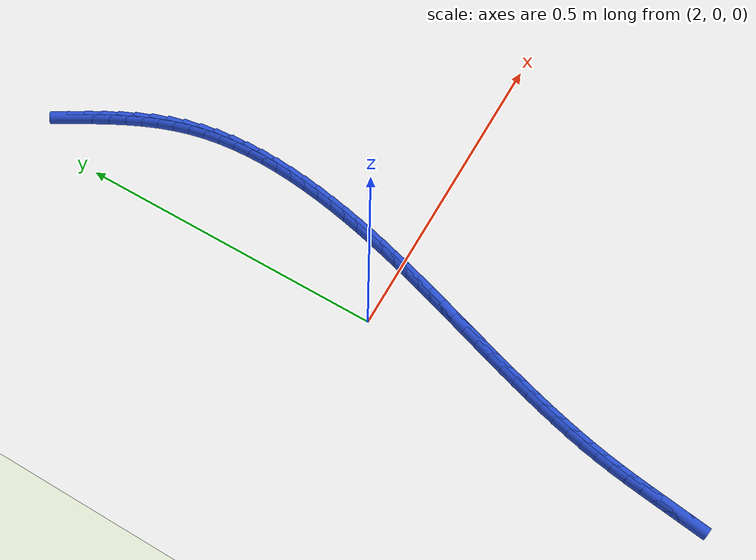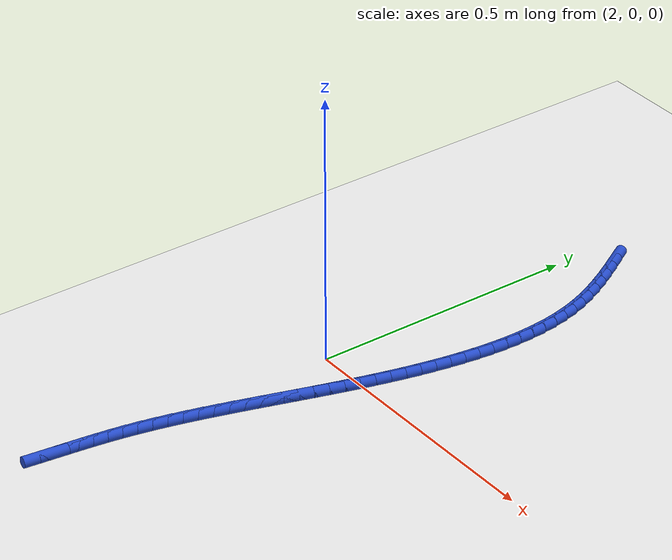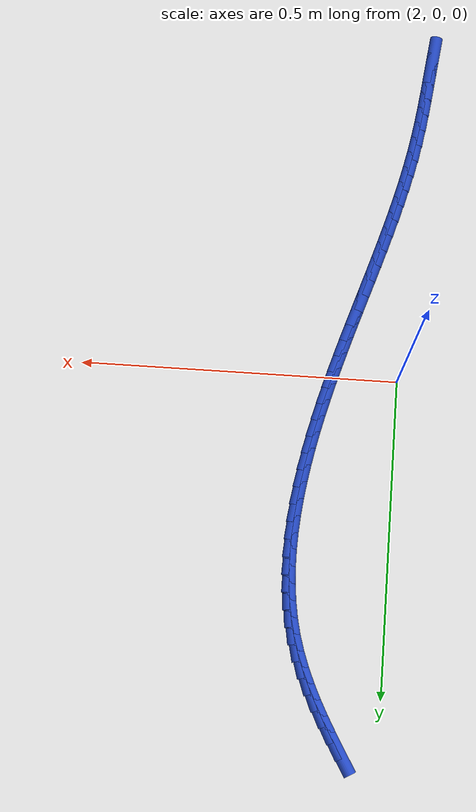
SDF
<sdf version="1.6">
 <world name="default">
  <model name="ground_plane">
   <static>1</static>
   <link name="link">
    <collision name="collision">
     <geometry><plane><normal>0 0 1</normal><size>100 100</size></plane></geometry>
     <surface><friction><ode><mu>100</mu><mu2>50</mu2></ode></friction></surface>
    </collision>
    <visual name="visual">
     <cast_shadows>0</cast_shadows>
     <geometry><plane><normal>0 0 1</normal><size>100 100</size></plane></geometry>
     <material>
      <script><uri>file://media/materials/scripts/gazebo.material</uri><name>Gazebo/WhiteGlow</name></script>
     </material>
    </visual>
   </link>
  </model>
  <model name="line">
   <link name="link_106">
    <pose>2.0617097885069713 0.5791009456725027 0.01 0 1.57 -1.0417948751601194</pose>
    <collision name="collision">
     <geometry><cylinder><radius>0.01</radius><length>0.08</length></cylinder></geometry>
    </collision>
    <visual name="visual">
     <material>
      <script><name>Gazebo/Blue</name><uri>file://media/materials/scripts/gazebo.material</uri></script>
     </material>
     <geometry><cylinder><radius>0.01</radius><length>0.08</length></cylinder></geometry>
    </visual>
   </link>
   <link name="link_107">
    <pose>2.075557122230398 0.5554131392653743 0.01 0 1.57 -1.0649773025050997</pose>
    <collision name="collision">
     <geometry><cylinder><radius>0.01</radius><length>0.08</length></cylinder></geometry>
    </collision>
    <visual name="visual">
     <material>
      <script><name>Gazebo/Blue</name><uri>file://media/materials/scripts/gazebo.material</uri></script>
     </material>
     <geometry><cylinder><radius>0.01</radius><length>0.08</length></cylinder></geometry>
    </visual>
   </link>
   <link name="link_108">
    <pose>2.0887252257602023 0.5316389510648379 0.01 0 1.57 -1.0952468598992928</pose>
    <collision name="collision">
     <geometry><cylinder><radius>0.01</radius><length>0.08</length></cylinder></geometry>
    </collision>
    <visual name="visual">
     <material>
      <script><name>Gazebo/Blue</name><uri>file://media/materials/scripts/gazebo.material</uri></script>
     </material>
     <geometry><cylinder><radius>0.01</radius><length>0.08</length></cylinder></geometry>
    </visual>
   </link>
   <link name="link_109">
    <pose>2.101048723008992 0.5077083012908975 0.01 0 1.57 -1.1328049238164106</pose>
    <collision name="collision">
     <geometry><cylinder><radius>0.01</radius><length>0.08</length></cylinder></geometry>
    </collision>
    <visual name="visual">
     <material>
      <script><name>Gazebo/Blue</name><uri>file://media/materials/scripts/gazebo.material</uri></script>
     </material>
     <geometry><cylinder><radius>0.01</radius><length>0.08</length></cylinder></geometry>
    </visual>
   </link>
   <link name="link_110">
    <pose>2.1123622378893736 0.4835511101635561 0.01 0 1.57 -1.1777811986397093</pose>
    <collision name="collision">
     <geometry><cylinder><radius>0.01</radius><length>0.08</length></cylinder></geometry>
    </collision>
    <visual name="visual">
     <material>
      <script><name>Gazebo/Blue</name><uri>file://media/materials/scripts/gazebo.material</uri></script>
     </material>
     <geometry><cylinder><radius>0.01</radius><length>0.08</length></cylinder></geometry>
    </visual>
   </link>
   <link name="link_111">
    <pose>2.1225003943139544 0.45909729790281845 0.01 0 1.57 -1.2301701369983</pose>
    <collision name="collision">
     <geometry><cylinder><radius>0.01</radius><length>0.08</length></cylinder></geometry>
    </collision>
    <visual name="visual">
     <material>
      <script><name>Gazebo/Blue</name><uri>file://media/materials/scripts/gazebo.material</uri></script>
     </material>
     <geometry><cylinder><radius>0.01</radius><length>0.08</length></cylinder></geometry>
    </visual>
   </link>
   <link name="link_112">
    <pose>2.131297816195341 0.43427678472868814 0.01 0 1.57 -1.2897556309995604</pose>
    <collision name="collision">
     <geometry><cylinder><radius>0.01</radius><length>0.08</length></cylinder></geometry>
    </collision>
    <visual name="visual">
     <material>
      <script><name>Gazebo/Blue</name><uri>file://media/materials/scripts/gazebo.material</uri></script>
     </material>
     <geometry><cylinder><radius>0.01</radius><length>0.08</length></cylinder></geometry>
    </visual>
   </link>
   <link name="link_113">
    <pose>2.1385891274461413 0.40901949086116873 0.01 0 1.57 -1.3542814319587406</pose>
    <collision name="collision">
     <geometry><cylinder><radius>0.01</radius><length>0.08</length></cylinder></geometry>
    </collision>
    <visual name="visual">
     <material>
      <script><name>Gazebo/Blue</name><uri>file://media/materials/scripts/gazebo.material</uri></script>
     </material>
     <geometry><cylinder><radius>0.01</radius><length>0.08</length></cylinder></geometry>
    </visual>
   </link>
   <link name="link_114">
    <pose>2.144251376809442 0.3832776499715393 0.01 0 1.57 -1.4158102971033224</pose>
    <collision name="collision">
     <geometry><cylinder><radius>0.01</radius><length>0.08</length></cylinder></geometry>
    </collision>
    <visual name="visual">
     <material>
      <script><name>Gazebo/Blue</name><uri>file://media/materials/scripts/gazebo.material</uri></script>
     </material>
     <geometry><cylinder><radius>0.01</radius><length>0.08</length></cylinder></geometry>
    </visual>
   </link>
   <link name="link_115">
    <pose>2.148341632134749 0.3570981772540021 0.01 0 1.57 -1.4723004554554038</pose>
    <collision name="collision">
     <geometry><cylinder><radius>0.01</radius><length>0.08</length></cylinder></geometry>
    </collision>
    <visual name="visual">
     <material>
      <script><name>Gazebo/Blue</name><uri>file://media/materials/scripts/gazebo.material</uri></script>
     </material>
     <geometry><cylinder><radius>0.01</radius><length>0.08</length></cylinder></geometry>
    </visual>
   </link>
   <link name="link_116">
    <pose>2.150964700974531 0.33055309672520883 0.01 0 1.57 -1.5238579154826077</pose>
    <collision name="collision">
     <geometry><cylinder><radius>0.01</radius><length>0.08</length></cylinder></geometry>
    </collision>
    <visual name="visual">
     <material>
      <script><name>Gazebo/Blue</name><uri>file://media/materials/scripts/gazebo.material</uri></script>
     </material>
     <geometry><cylinder><radius>0.01</radius><length>0.08</length></cylinder></geometry>
    </visual>
   </link>
   <link name="link_117">
    <pose>2.1522253912241633 0.30371443258216274 0.01 0 1.57 -1.5706810448632165</pose>
    <collision name="collision">
     <geometry><cylinder><radius>0.01</radius><length>0.08</length></cylinder></geometry>
    </collision>
    <visual name="visual">
     <material>
      <script><name>Gazebo/Blue</name><uri>file://media/materials/scripts/gazebo.material</uri></script>
     </material>
     <geometry><cylinder><radius>0.01</radius><length>0.08</length></cylinder></geometry>
    </visual>
   </link>
   <link name="link_118">
    <pose>2.152228510779021 0.2766542090218669 0.01 0 1.57 1.5285703046124783</pose>
    <collision name="collision">
     <geometry><cylinder><radius>0.01</radius><length>0.08</length></cylinder></geometry>
    </collision>
    <visual name="visual">
     <material>
      <script><name>Gazebo/Blue</name><uri>file://media/materials/scripts/gazebo.material</uri></script>
     </material>
     <geometry><cylinder><radius>0.01</radius><length>0.08</length></cylinder></geometry>
    </visual>
   </link>
   <link name="link_119">
    <pose>2.151078867534479 0.2494444502413257 0.01 0 1.57 1.4904341151220912</pose>
    <collision name="collision">
     <geometry><cylinder><radius>0.01</radius><length>0.08</length></cylinder></geometry>
    </collision>
    <visual name="visual">
     <material>
      <script><name>Gazebo/Blue</name><uri>file://media/materials/scripts/gazebo.material</uri></script>
     </material>
     <geometry><cylinder><radius>0.01</radius><length>0.08</length></cylinder></geometry>
    </visual>
   </link>
   <link name="link_120">
    <pose>2.1488812693859107 0.22215718043754223 0.01 0 1.57 1.456224151799545</pose>
    <collision name="collision">
     <geometry><cylinder><radius>0.01</radius><length>0.08</length></cylinder></geometry>
    </collision>
    <visual name="visual">
     <material>
      <script><name>Gazebo/Blue</name><uri>file://media/materials/scripts/gazebo.material</uri></script>
     </material>
     <geometry><cylinder><radius>0.01</radius><length>0.08</length></cylinder></geometry>
    </visual>
   </link>
   <link name="link_121">
    <pose>2.145740524228694 0.1948644238075202 0.01 0 1.57 1.4256747655368256</pose>
    <collision name="collision">
     <geometry><cylinder><radius>0.01</radius><length>0.08</length></cylinder></geometry>
    </collision>
    <visual name="visual">
     <material>
      <script><name>Gazebo/Blue</name><uri>file://media/materials/scripts/gazebo.material</uri></script>
     </material>
     <geometry><cylinder><radius>0.01</radius><length>0.08</length></cylinder></geometry>
    </visual>
   </link>
   <link name="link_122">
    <pose>2.1417614399582012 0.16763820454826311 0.01 0 1.57 1.398543487704675</pose>
    <collision name="collision">
     <geometry><cylinder><radius>0.01</radius><length>0.08</length></cylinder></geometry>
    </collision>
    <visual name="visual">
     <material>
      <script><name>Gazebo/Blue</name><uri>file://media/materials/scripts/gazebo.material</uri></script>
     </material>
     <geometry><cylinder><radius>0.01</radius><length>0.08</length></cylinder></geometry>
    </visual>
   </link>
   <link name="link_123">
    <pose>2.137048805430933 0.14055050890555687 0.01 0 1.57 1.3743934281388728</pose>
    <collision name="collision">
     <geometry><cylinder><radius>0.01</radius><length>0.08</length></cylinder></geometry>
    </collision>
    <visual name="visual">
     <material>
      <script><name>Gazebo/Blue</name><uri>file://media/materials/scripts/gazebo.material</uri></script>
     </material>
     <geometry><cylinder><radius>0.01</radius><length>0.08</length></cylinder></geometry>
    </visual>
   </link>
   <link name="link_124">
    <pose>2.1316969691169296 0.11365251173982498 0.01 0 1.57 1.3525439467801532</pose>
    <collision name="collision">
     <geometry><cylinder><radius>0.01</radius><length>0.08</length></cylinder></geometry>
    </collision>
    <visual name="visual">
     <material>
      <script><name>Gazebo/Blue</name><uri>file://media/materials/scripts/gazebo.material</uri></script>
     </material>
     <geometry><cylinder><radius>0.01</radius><length>0.08</length></cylinder></geometry>
    </visual>
   </link>
   <link name="link_125">
    <pose>2.1257725615743515 0.08694013630295294 0.01 0 1.57 1.3329254455770845</pose>
    <collision name="collision">
     <geometry><cylinder><radius>0.01</radius><length>0.08</length></cylinder></geometry>
    </collision>
    <visual name="visual">
     <material>
      <script><name>Gazebo/Blue</name><uri>file://media/materials/scripts/gazebo.material</uri></script>
     </material>
     <geometry><cylinder><radius>0.01</radius><length>0.08</length></cylinder></geometry>
    </visual>
   </link>
   <link name="link_126">
    <pose>2.1193376649342257 0.060400239221731655 0.01 0 1.57 1.3155636156404653</pose>
    <collision name="collision">
     <geometry><cylinder><radius>0.01</radius><length>0.08</length></cylinder></geometry>
    </collision>
    <visual name="visual">
     <material>
      <script><name>Gazebo/Blue</name><uri>file://media/materials/scripts/gazebo.material</uri></script>
     </material>
     <geometry><cylinder><radius>0.01</radius><length>0.08</length></cylinder></geometry>
    </visual>
   </link>
   <link name="link_127">
    <pose>2.1124543613275786 0.03401967712295306 0.01 0 1.57 1.3004758257200215</pose>
    <collision name="collision">
     <geometry><cylinder><radius>0.01</radius><length>0.08</length></cylinder></geometry>
    </collision>
    <visual name="visual">
     <material>
      <script><name>Gazebo/Blue</name><uri>file://media/materials/scripts/gazebo.material</uri></script>
     </material>
     <geometry><cylinder><radius>0.01</radius><length>0.08</length></cylinder></geometry>
    </visual>
   </link>
   <link name="link_128">
    <pose>2.1051847328854385 0.007785306633408087 0.01 0 1.57 1.2876737238943876</pose>
    <collision name="collision">
     <geometry><cylinder><radius>0.01</radius><length>0.08</length></cylinder></geometry>
    </collision>
    <visual name="visual">
     <material>
      <script><name>Gazebo/Blue</name><uri>file://media/materials/scripts/gazebo.material</uri></script>
     </material>
     <geometry><cylinder><radius>0.01</radius><length>0.08</length></cylinder></geometry>
    </visual>
   </link>
   <link name="link_129">
    <pose>2.0975908617388317 -0.01831601562011212 0.01 0 1.57 1.2771655640591038</pose>
    <collision name="collision">
     <geometry><cylinder><radius>0.01</radius><length>0.08</length></cylinder></geometry>
    </collision>
    <visual name="visual">
     <material>
      <script><name>Gazebo/Blue</name><uri>file://media/materials/scripts/gazebo.material</uri></script>
     </material>
     <geometry><cylinder><radius>0.01</radius><length>0.08</length></cylinder></geometry>
    </visual>
   </link>
   <link name="link_130">
    <pose>2.0897348300187857 -0.04429743301081633 0.01 0 1.57 1.2689582179491106</pose>
    <collision name="collision">
     <geometry><cylinder><radius>0.01</radius><length>0.08</length></cylinder></geometry>
    </collision>
    <visual name="visual">
     <material>
      <script><name>Gazebo/Blue</name><uri>file://media/materials/scripts/gazebo.material</uri></script>
     </material>
     <geometry><cylinder><radius>0.01</radius><length>0.08</length></cylinder></geometry>
    </visual>
   </link>
   <link name="link_131">
    <pose>2.0816787198563267 -0.07017208891191332 0.01 0 1.57 1.2630588523402586</pose>
    <collision name="collision">
     <geometry><cylinder><radius>0.01</radius><length>0.08</length></cylinder></geometry>
    </collision>
    <visual name="visual">
     <material>
      <script><name>Gazebo/Blue</name><uri>file://media/materials/scripts/gazebo.material</uri></script>
     </material>
     <geometry><cylinder><radius>0.01</radius><length>0.08</length></cylinder></geometry>
    </visual>
   </link>
   <link name="link_132">
    <pose>2.0734846133824827 -0.09595312669661184 0.01 0 1.57 1.25947626262644</pose>
    <collision name="collision">
     <geometry><cylinder><radius>0.01</radius><length>0.08</length></cylinder></geometry>
    </collision>
    <visual name="visual">
     <material>
      <script><name>Gazebo/Blue</name><uri>file://media/materials/scripts/gazebo.material</uri></script>
     </material>
     <geometry><cylinder><radius>0.01</radius><length>0.08</length></cylinder></geometry>
    </visual>
   </link>
   <link name="link_133">
    <pose>2.065214592728281 -0.12165368973812146 0.01 0 1.57 1.258221859126544</pose>
    <collision name="collision">
     <geometry><cylinder><radius>0.01</radius><length>0.08</length></cylinder></geometry>
    </collision>
    <visual name="visual">
     <material>
      <script><name>Gazebo/Blue</name><uri>file://media/materials/scripts/gazebo.material</uri></script>
     </material>
     <geometry><cylinder><radius>0.01</radius><length>0.08</length></cylinder></geometry>
    </visual>
   </link>
   <link name="link_134">
    <pose>2.056930740024747 -0.14728692140964944 0.01 0 1.57 1.259310302424667</pose>
    <collision name="collision">
     <geometry><cylinder><radius>0.01</radius><length>0.08</length></cylinder></geometry>
    </collision>
    <visual name="visual">
     <material>
      <script><name>Gazebo/Blue</name><uri>file://media/materials/scripts/gazebo.material</uri></script>
     </material>
     <geometry><cylinder><radius>0.01</radius><length>0.08</length></cylinder></geometry>
    </visual>
   </link>
   <link name="link_135">
    <pose>2.048695137402909 -0.1728659650844053 0.01 0 1.57 1.2627597800508406</pose>
    <collision name="collision">
     <geometry><cylinder><radius>0.01</radius><length>0.08</length></cylinder></geometry>
    </collision>
    <visual name="visual">
     <material>
      <script><name>Gazebo/Blue</name><uri>file://media/materials/scripts/gazebo.material</uri></script>
     </material>
     <geometry><cylinder><radius>0.01</radius><length>0.08</length></cylinder></geometry>
    </visual>
   </link>
   <link name="link_136">
    <pose>2.0405698669937946 -0.1984039641355978 0.01 0 1.57 1.2685919101389145</pose>
    <collision name="collision">
     <geometry><cylinder><radius>0.01</radius><length>0.08</length></cylinder></geometry>
    </collision>
    <visual name="visual">
     <material>
      <script><name>Gazebo/Blue</name><uri>file://media/materials/scripts/gazebo.material</uri></script>
     </material>
     <geometry><cylinder><radius>0.01</radius><length>0.08</length></cylinder></geometry>
    </visual>
   </link>
   <link name="link_137">
    <pose>2.0326170109284294 -0.2239140619364358 0.01 0 1.57 1.2768312496610499</pose>
    <collision name="collision">
     <geometry><cylinder><radius>0.01</radius><length>0.08</length></cylinder></geometry>
    </collision>
    <visual name="visual">
     <material>
      <script><name>Gazebo/Blue</name><uri>file://media/materials/scripts/gazebo.material</uri></script>
     </material>
     <geometry><cylinder><radius>0.01</radius><length>0.08</length></cylinder></geometry>
    </visual>
   </link>
   <link name="link_138">
    <pose>2.0248986513378417 -0.24940940186012797 0.01 0 1.57 1.2875043768708858</pose>
    <collision name="collision">
     <geometry><cylinder><radius>0.01</radius><length>0.08</length></cylinder></geometry>
    </collision>
    <visual name="visual">
     <material>
      <script><name>Gazebo/Blue</name><uri>file://media/materials/scripts/gazebo.material</uri></script>
     </material>
     <geometry><cylinder><radius>0.01</radius><length>0.08</length></cylinder></geometry>
    </visual>
   </link>
   <link name="link_139">
    <pose>2.0174768703530583 -0.2749031272798832 0.01 0 1.57 1.3006385113874825</pose>
    <collision name="collision">
     <geometry><cylinder><radius>0.01</radius><length>0.08</length></cylinder></geometry>
    </collision>
    <visual name="visual">
     <material>
      <script><name>Gazebo/Blue</name><uri>file://media/materials/scripts/gazebo.material</uri></script>
     </material>
     <geometry><cylinder><radius>0.01</radius><length>0.08</length></cylinder></geometry>
    </visual>
   </link>
   <link name="link_140">
    <pose>2.010413750105106 -0.3004083815689109 0.01 0 1.57 1.3162596329849092</pose>
    <collision name="collision">
     <geometry><cylinder><radius>0.01</radius><length>0.08</length></cylinder></geometry>
    </collision>
    <visual name="visual">
     <material>
      <script><name>Gazebo/Blue</name><uri>file://media/materials/scripts/gazebo.material</uri></script>
     </material>
     <geometry><cylinder><radius>0.01</radius><length>0.08</length></cylinder></geometry>
    </visual>
   </link>
   <link name="link_141">
    <pose>2.0037713727250117 -0.3259383081004185 0.01 0 1.57 1.33439006417583</pose>
    <collision name="collision">
     <geometry><cylinder><radius>0.01</radius><length>0.08</length></cylinder></geometry>
    </collision>
    <visual name="visual">
     <material>
      <script><name>Gazebo/Blue</name><uri>file://media/materials/scripts/gazebo.material</uri></script>
     </material>
     <geometry><cylinder><radius>0.01</radius><length>0.08</length></cylinder></geometry>
    </visual>
   </link>
   <link name="link_142">
    <pose>1.9976118203438031 -0.3515060502476154 0.01 0 1.57 1.355045495102373</pose>
    <collision name="collision">
     <geometry><cylinder><radius>0.01</radius><length>0.08</length></cylinder></geometry>
    </collision>
    <visual name="visual">
     <material>
      <script><name>Gazebo/Blue</name><uri>file://media/materials/scripts/gazebo.material</uri></script>
     </material>
     <geometry><cylinder><radius>0.01</radius><length>0.08</length></cylinder></geometry>
    </visual>
   </link>
   <link name="link_143">
    <pose>1.9919971750925067 -0.37712475138371043 0.01 0 1.57 1.3782314091044279</pose>
    <collision name="collision">
     <geometry><cylinder><radius>0.01</radius><length>0.08</length></cylinder></geometry>
    </collision>
    <visual name="visual">
     <material>
      <script><name>Gazebo/Blue</name><uri>file://media/materials/scripts/gazebo.material</uri></script>
     </material>
     <geometry><cylinder><radius>0.01</radius><length>0.08</length></cylinder></geometry>
    </visual>
   </link>
   <link name="link_144">
    <pose>1.9869895177145422 -0.4028075556735563 0.01 0 1.57 1.402506984845697</pose>
    <collision name="collision">
     <geometry><cylinder><radius>0.01</radius><length>0.08</length></cylinder></geometry>
    </collision>
    <visual name="visual">
     <material>
      <script><name>Gazebo/Blue</name><uri>file://media/materials/scripts/gazebo.material</uri></script>
     </material>
     <geometry><cylinder><radius>0.01</radius><length>0.08</length></cylinder></geometry>
    </visual>
   </link>
   <link name="link_145">
    <pose>1.9826089079639047 -0.42859158067171826 0.01 0 1.57 1.4224961316911142</pose>
    <collision name="collision">
     <geometry><cylinder><radius>0.01</radius><length>0.08</length></cylinder></geometry>
    </collision>
    <visual name="visual">
     <material>
      <script><name>Gazebo/Blue</name><uri>file://media/materials/scripts/gazebo.material</uri></script>
     </material>
     <geometry><cylinder><radius>0.01</radius><length>0.08</length></cylinder></geometry>
    </visual>
   </link>
   <link name="link_146">
    <pose>1.9787232120105414 -0.45460077187641706 0.01 0 1.57 1.436743976408335</pose>
    <collision name="collision">
     <geometry><cylinder><radius>0.01</radius><length>0.08</length></cylinder></geometry>
    </collision>
    <visual name="visual">
     <material>
      <script><name>Gazebo/Blue</name><uri>file://media/materials/scripts/gazebo.material</uri></script>
     </material>
     <geometry><cylinder><radius>0.01</radius><length>0.08</length></cylinder></geometry>
    </visual>
   </link>
   <link name="link_147">
    <pose>1.9751658510626366 -0.4809787259769402 0.01 0 1.57 1.4451850334510745</pose>
    <collision name="collision">
     <geometry><cylinder><radius>0.01</radius><length>0.08</length></cylinder></geometry>
    </collision>
    <visual name="visual">
     <material>
      <script><name>Gazebo/Blue</name><uri>file://media/materials/scripts/gazebo.material</uri></script>
     </material>
     <geometry><cylinder><radius>0.01</radius><length>0.08</length></cylinder></geometry>
    </visual>
   </link>
   <link name="link_148">
    <pose>1.9717702463283753 -0.5078690396625755 0.01 0 1.57 1.4479734871076269</pose>
    <collision name="collision">
     <geometry><cylinder><radius>0.01</radius><length>0.08</length></cylinder></geometry>
    </collision>
    <visual name="visual">
     <material>
      <script><name>Gazebo/Blue</name><uri>file://media/materials/scripts/gazebo.material</uri></script>
     </material>
     <geometry><cylinder><radius>0.01</radius><length>0.08</length></cylinder></geometry>
    </visual>
   </link>
   <link name="link_149">
    <pose>1.96836981901594 -0.5354153096226111 0.01 0 1.57 1.4449263913781503</pose>
    <collision name="collision">
     <geometry><cylinder><radius>0.01</radius><length>0.08</length></cylinder></geometry>
    </collision>
    <visual name="visual">
     <material>
      <script><name>Gazebo/Blue</name><uri>file://media/materials/scripts/gazebo.material</uri></script>
     </material>
     <geometry><cylinder><radius>0.01</radius><length>0.08</length></cylinder></geometry>
    </visual>
   </link>
  </model>
 </world>
</sdf>
